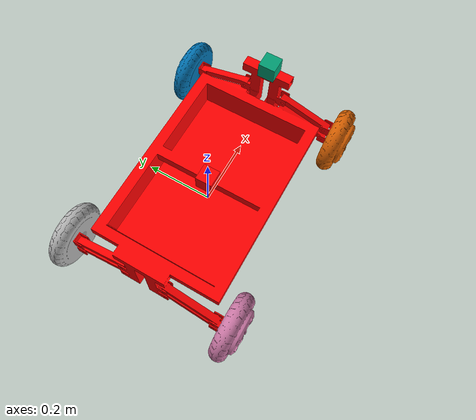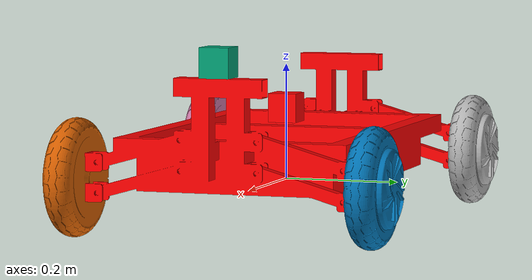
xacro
<?xml version="1.0"?>

<robot name="mobile_robot_description" xmlns:xacro="http://www.ros.org/wiki/xacro">
    <xacro:include filename="$(find autonomous_car)/urdf/simulation_gazebo.xacro"/>

    <!-- Main chassis of car -->
    <link name="base_link"/>

    <link name="car_body">
        <inertial>
            <origin xyz="0 0 0" rpy="0.0 0.0 0.0"/>
            <mass value="15.0"/>
            <inertia ixx="0.25" ixy="0.0" ixz="0.0"
             iyy="0.81" iyz="0.0"
             izz="1" />
        </inertial>
        <visual>
            <origin xyz="0.5 -0.223 0.2" rpy="-1.5708 0.0 1.5708"/>
            <geometry>
                <mesh filename="package://autonomous_car/meshes/chasis.STL" scale="0.001 0.001 0.001"/>
            </geometry>
            <material name="">
                <color rgba="1.0 0.0 0.0 1.0"/>
            </material>
        </visual>
        <collision>
            <origin xyz="0.5 -0.223 0.2" rpy="-1.5708 0.0 1.5708"/>
            <geometry>
                <mesh filename="package://autonomous_car/meshes/chasis.STL" scale="0.001 0.001 0.001"/>
            </geometry>
        </collision>
    </link>

    <joint name="base_joint" type="fixed">
        <origin xyz="0.0 0.0 0.0" rpy="0.0 0.0 0.0"/>
        <parent link="base_link"/>
        <child link="car_body"/>
    </joint>

    <!-- Sensors -->
     <!-- Camera -->
    <link name="camera_sensor_link">
        <collision>
          <origin xyz="0 0 0" rpy="0 0 0"/>
          <geometry>
              <box size="0.05 0.05 0.05"/>
          </geometry>
        </collision>

        <visual>
          <origin xyz="0 0 0" rpy="0 0 0"/>
          <geometry>
              <box size="0.05 0.05 0.05"/>
          </geometry>
        </visual>

        <inertial>
          <mass value="0" />
          <origin xyz="0 0 0" rpy="0 0 0"/>
          <inertia ixx="0" ixy="0" ixz="0" iyy="0" iyz="0" izz="0" />
        </inertial>
    </link>

    <joint name="camera_sensor_joint" type="fixed">
        <origin xyz="0.35 0.0 0.225" rpy="0.0 0.0 0.0"/>
        <parent link="car_body"/>
        <child link="camera_sensor_link"/>
        <axis xyz="0.0 0.0 0.0"/>
    </joint>

    <!-- Gyroscope -->
    <link name="IMU_sensor_link">
        <inertial>
            <origin xyz="0.0 0.0 0.0" rpy="0.0 0.0 0.0"/>
            <mass value="0.0"/>
            <inertia ixx="0.002" ixy="0.0" ixz="0.0" iyy="0.002" iyz="0.0" izz="0.0038"/>

        </inertial>
        <visual name="">
            <origin xyz="0.0 0.0 0.0" rpy="0.0 0.0 0.0"/>
            <geometry>
                <box size="0.05 0.05 0.05"/>
            </geometry>
            <material name="">
                <color rgba="1.0 0.0 0.0 1.0"/>
                <texture filename=""/>
            </material>
        </visual>
        <collision>
            <origin xyz="0.0 0.0 0.0" rpy="0.0 0.0 0.0"/>
            <geometry>
                <box size="0.05 0.05 0.05"/>
            </geometry>
        </collision>
    </link>

    <joint name="IMU_sensor_joint" type="fixed">
        <origin xyz="0.0 0.0 0.125" rpy="0.0 0.0 0.0"/>
        <parent link="car_body"/>
        <child link="IMU_sensor_link"/>
        <axis xyz="0.0 0.0 0.0"/>
    </joint>

    <!-- Wheels -->
    <!-- right wheel -->
    <link name="right_wheel">
        <inertial>
            <origin xyz="0.0 0.0 0.0" rpy="1.5708 0.0 0.0"/>
            <mass value="0.8"/>
            <inertia ixx="0.002" ixy="0.0" ixz="0.0" iyy="0.002" iyz="0.0" izz="0.0038"/>

        </inertial>
        <visual>
            <origin xyz="-0.0975 -0.03 -0.0975" rpy="1.5708 0.0 1.5708"/>
            <geometry>
                <mesh filename="package://autonomous_car/meshes/wheel.STL" scale="0.001 0.001 0.001"/>
            </geometry>
        </visual>
        <collision>
            <origin xyz="-0.0975 -0.03 -0.0975" rpy="1.5708 0.0 1.5708"/>
            <geometry>
                <mesh filename="package://autonomous_car/meshes/wheel.STL" scale="0.001 0.001 0.001"/>
            </geometry>
        </collision>
    </link>

    <joint name="right_wheel_joint" type="continuous">
        <origin xyz="0.35 0.26 0.03" rpy="0.0 0.0 0.0"/>
        <parent link="car_body"/>
        <child link="right_wheel"/>
        <axis xyz="0.0 1.0 0.0"/>
    </joint>

    <!-- left wheel  -->

    <link name="left_wheel">
        <inertial>
            <origin xyz="0.0 0.0 0.0" rpy="1.5708 0.0 0.0"/>
            <mass value="0.8"/>
            <inertia ixx="0.002" ixy="0.0" ixz="0.0" iyy="0.002" iyz="0.0" izz="0.0038"/>

        </inertial>
        <visual>
            <origin xyz="0.0975 0.03 -0.0975" rpy="1.5708 0.0 -1.5708"/>
            <geometry>
                <mesh filename="package://autonomous_car/meshes/wheel.STL" scale="0.001 0.001 0.001"/>
            </geometry>
        </visual>
        <collision>
            <origin xyz="0.0975 0.03 -0.0975" rpy="1.5708 0.0 -1.5708"/>
            <geometry>
                <mesh filename="package://autonomous_car/meshes/wheel.STL" scale="0.001 0.001 0.001"/>
            </geometry>
        </collision>
    </link>

    <joint name="left_wheel_joint" type="continuous">
        <origin xyz="0.35 -0.25 0.03" rpy="0.0 0.0 0.0"/>
        <parent link="car_body"/>
        <child link="left_wheel"/>
        <axis xyz="0.0 1.0 0.0"/>
    </joint>

    <link name="left_back_wheel">
        <inertial>
            <origin xyz="0.0 0.0 0.0" rpy="1.5708 0.0 0.0"/>
            <mass value="0.8"/>
            <inertia ixx="0.002" ixy="0.0" ixz="0.0" iyy="0.002" iyz="0.0" izz="0.0038"/>

        </inertial>
        <visual>
            <origin xyz="0.0975 0.03 -0.0975" rpy="1.5708 0.0 -1.5708"/>
            <geometry>
                <mesh filename="package://autonomous_car/meshes/wheel.STL" scale="0.001 0.001 0.001"/>
            </geometry>
        </visual>
        <collision>
            <origin xyz="0.0975 0.03 -0.0975" rpy="1.5708 0.0 -1.5708"/>
            <geometry>
                <mesh filename="package://autonomous_car/meshes/wheel.STL" scale="0.001 0.001 0.001"/>
            </geometry>
        </collision>
    </link>

    <joint name="left_back_wheel_joint" type="continuous">
        <origin xyz="-0.3 -0.25 0.03" rpy="0.0 0.0 0.0"/>
        <parent link="car_body"/>
        <child link="left_back_wheel"/>
        <axis xyz="0.0 1.0 0.0"/>
    </joint>

    <link name="right_back_wheel">
        <inertial>
            <origin xyz="0.0 0.0 0.0" rpy="1.5708 0.0 0.0"/>
            <mass value="0.8"/>
            <inertia ixx="0.002" ixy="0.0" ixz="0.0" iyy="0.002" iyz="0.0" izz="0.0038"/>

        </inertial>
        <visual>
            <origin xyz="-0.0975 -0.03 -0.0975" rpy="1.5708 0.0 1.5708"/>
            <geometry>
                <mesh filename="package://autonomous_car/meshes/wheel.STL" scale="0.001 0.001 0.001"/>
            </geometry>
        </visual>
        <collision>
            <origin xyz="-0.0975 -0.03 -0.0975" rpy="1.5708 0.0 1.5708"/>
            <geometry>
                <mesh filename="package://autonomous_car/meshes/wheel.STL" scale="0.001 0.001 0.001"/>
            </geometry>
        </collision>
    </link>

    <joint name="right_back_wheel_joint" type="continuous">
        <origin xyz="-0.30 0.26 0.03" rpy="0.0 0.0 0.0"/>
        <parent link="car_body"/>
        <child link="right_back_wheel"/>
        <axis xyz="0.0 1.0 0.0"/>
    </joint>

</robot>
